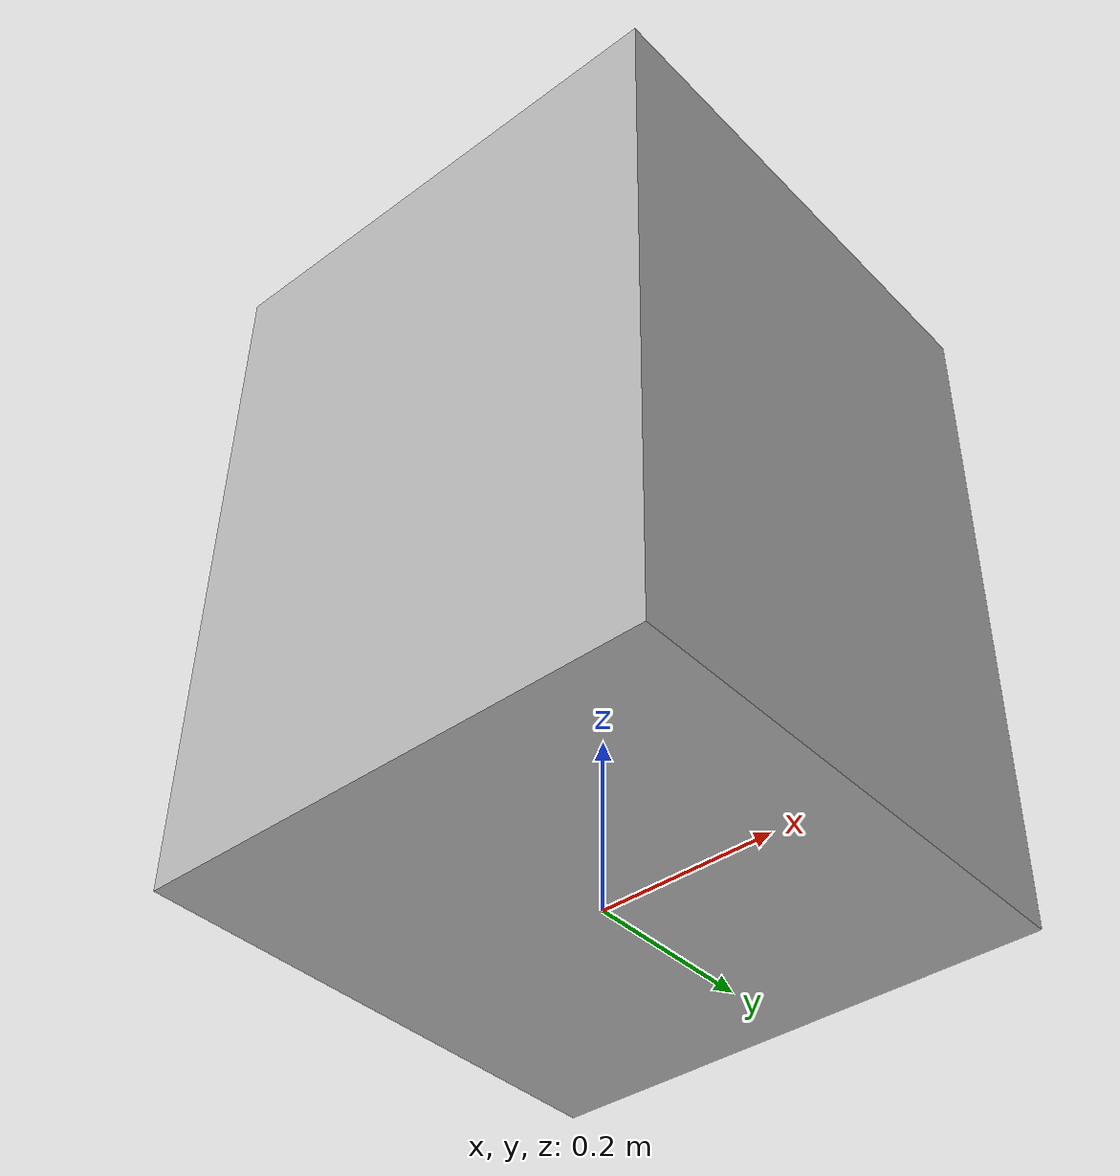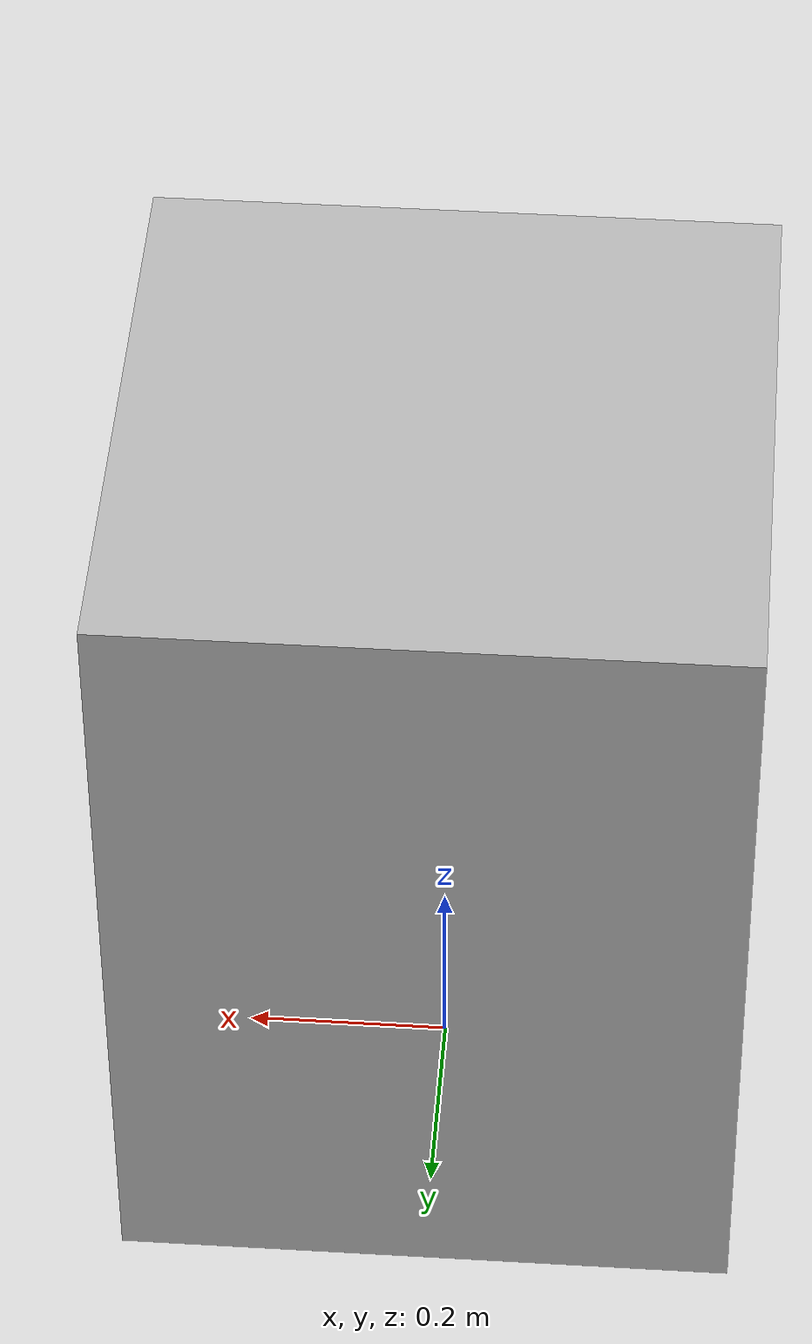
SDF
<?xml version="1.0"?>
<sdf version="1.6">
  <model name="rwc2019/dishwasher">
    <link name="1_link">
      <collision name="1_col">
        <geometry>
          <box>
            <size>0.6 0.6 0.84</size>
          </box>
        </geometry>
      </collision>
      <visual name="1_vis">
        <geometry>
          <box>
            <size>0.6 0.6 0.84</size>
          </box>
        </geometry>
      </visual>
      <pose>0.0 0.0 0.42 0 0 0</pose>
    </link>
    <link name="on_top_of">
      <virtual_volume name="on_top_of_vv">
        <geometry>
          <box>
            <size>0.58 0.54 0.25</size>
          </box>
        </geometry>
        <pose>0.0 0.0 0.985 0 0 0</pose>
      </virtual_volume>
    </link>
    <link name="in_front_of">
      <virtual_volume name="in_front_of_vv">
        <geometry>
          <box>
            <size>0.18 0.4 0.01</size>
          </box>
        </geometry>
        <pose>0.82 0.0 0.005 0 0 0</pose>
      </virtual_volume>
    </link>
    <static>true</static>
  </model>
</sdf>
